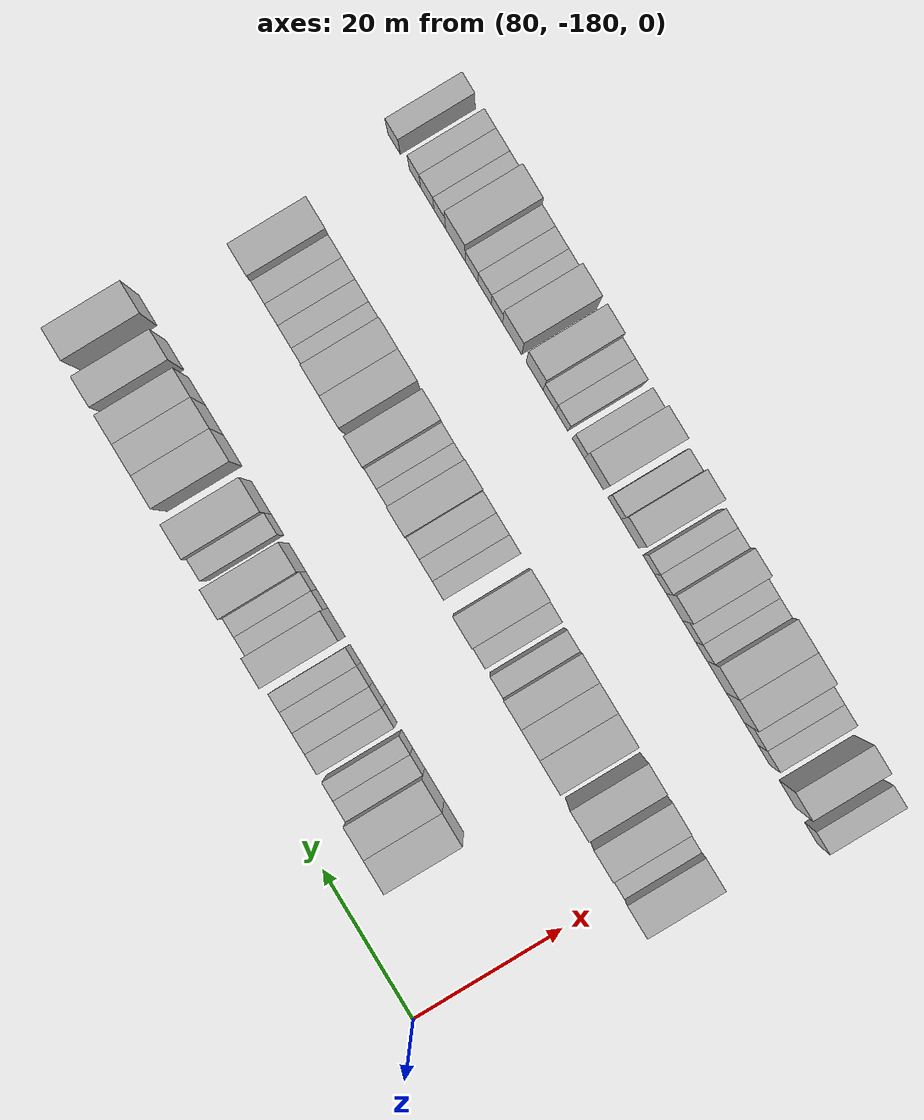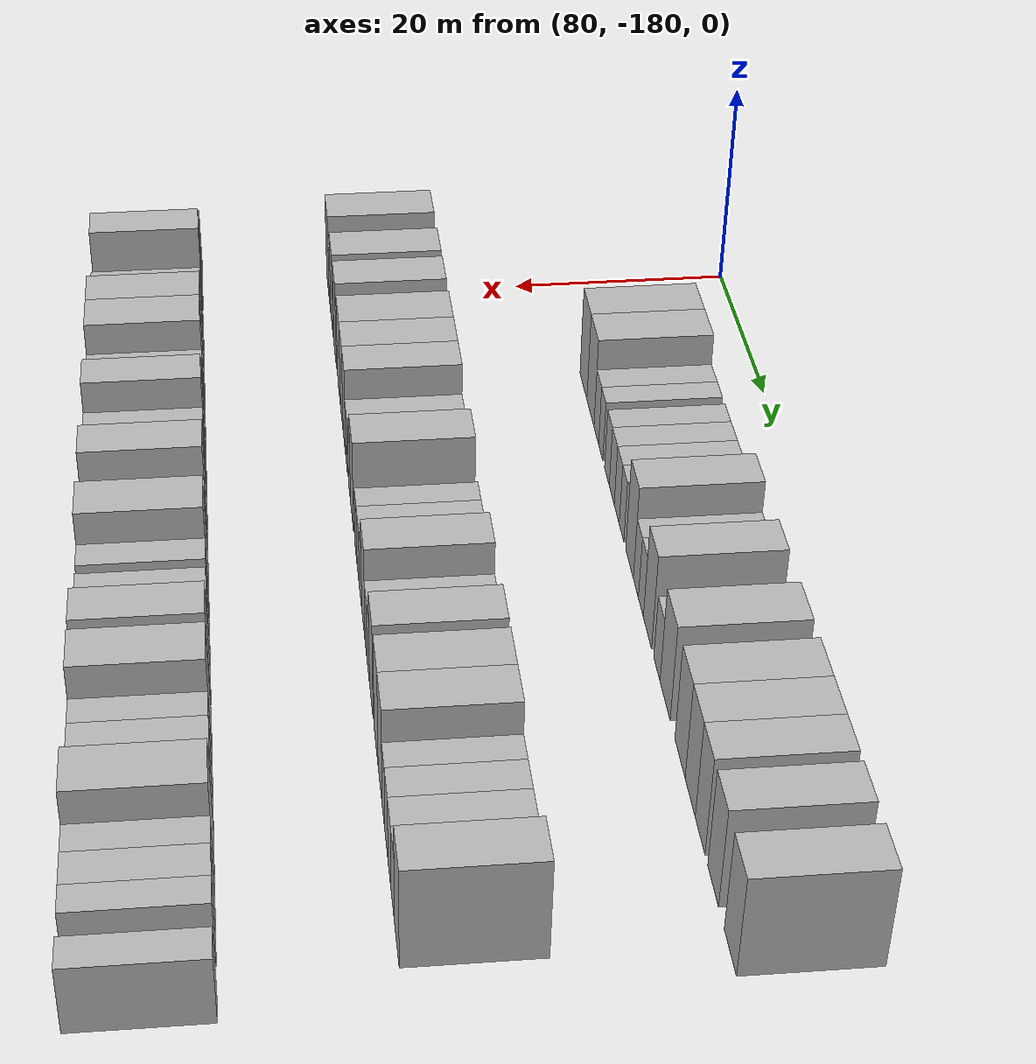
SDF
<sdf version="1.6">
 <world name="default">
  <model name="building_617">
   <static>1</static>
   <pose>91.0000 -162.4675 0 0.000000 0.000000 0.000000</pose>
   <link name="link">
    <pose>0 0 4.50 0 0 0</pose>
    <collision name="collision"><geometry><box><size>10.0000 4.3188 9.0000</size></box></geometry></collision>
    <visual name="visual">
     <cast_shadows>0</cast_shadows>
     <geometry><box><size>10.0000 4.3188 9.0000</size></box></geometry>
     <material>
      <script>
       <uri>model://HANNAS_wall/materials/scripts</uri>
       <uri>model://HANNAS_wall/materials/textures</uri>
       <name>vrc/HANNAS_wall</name>
      </script>
     </material>
    </visual>
   </link>
  </model>
  <model name="building_618">
   <static>1</static>
   <pose>91.0000 -158.1714 0 0.000000 0.000000 0.000000</pose>
   <link name="link">
    <pose>0 0 4.50 0 0 0</pose>
    <collision name="collision"><geometry><box><size>10.0000 4.2734 9.0000</size></box></geometry></collision>
    <visual name="visual">
     <cast_shadows>0</cast_shadows>
     <geometry><box><size>10.0000 4.2734 9.0000</size></box></geometry>
     <material>
      <script>
       <uri>model://HANNAS_wall/materials/scripts</uri>
       <uri>model://HANNAS_wall/materials/textures</uri>
       <name>vrc/HANNAS_wall</name>
      </script>
     </material>
    </visual>
   </link>
  </model>
  <model name="building_619">
   <static>1</static>
   <pose>91.0000 -154.6838 0 0.000000 0.000000 0.000000</pose>
   <link name="link">
    <pose>0 0 3.00 0 0 0</pose>
    <collision name="collision"><geometry><box><size>10.0000 2.7017 6.0000</size></box></geometry></collision>
    <visual name="visual">
     <cast_shadows>0</cast_shadows>
     <geometry><box><size>10.0000 2.7017 6.0000</size></box></geometry>
     <material>
      <script>
       <uri>model://HANNAS_wall/materials/scripts</uri>
       <uri>model://HANNAS_wall/materials/textures</uri>
       <name>vrc/HANNAS_wall</name>
      </script>
     </material>
    </visual>
   </link>
  </model>
  <model name="building_620">
   <static>1</static>
   <pose>91.0000 -152.1274 0 0.000000 0.000000 0.000000</pose>
   <link name="link">
    <pose>0 0 3.00 0 0 0</pose>
    <collision name="collision"><geometry><box><size>10.0000 2.4111 6.0000</size></box></geometry></collision>
    <visual name="visual">
     <cast_shadows>0</cast_shadows>
     <geometry><box><size>10.0000 2.4111 6.0000</size></box></geometry>
     <material>
      <script>
       <uri>model://HANNAS_wall/materials/scripts</uri>
       <uri>model://HANNAS_wall/materials/textures</uri>
       <name>vrc/HANNAS_wall</name>
      </script>
     </material>
    </visual>
   </link>
  </model>
  <model name="building_621">
   <static>1</static>
   <pose>91.0000 -148.6136 0 0.000000 0.000000 0.000000</pose>
   <link name="link">
    <pose>0 0 3.00 0 0 0</pose>
    <collision name="collision"><geometry><box><size>10.0000 2.6164 6.0000</size></box></geometry></collision>
    <visual name="visual">
     <cast_shadows>0</cast_shadows>
     <geometry><box><size>10.0000 2.6164 6.0000</size></box></geometry>
     <material>
      <script>
       <uri>model://HANNAS_wall/materials/scripts</uri>
       <uri>model://HANNAS_wall/materials/textures</uri>
       <name>vrc/HANNAS_wall</name>
      </script>
     </material>
    </visual>
   </link>
  </model>
  <model name="building_622">
   <static>1</static>
   <pose>91.0000 -145.9317 0 0.000000 0.000000 0.000000</pose>
   <link name="link">
    <pose>0 0 3.00 0 0 0</pose>
    <collision name="collision"><geometry><box><size>10.0000 2.7474 6.0000</size></box></geometry></collision>
    <visual name="visual">
     <cast_shadows>0</cast_shadows>
     <geometry><box><size>10.0000 2.7474 6.0000</size></box></geometry>
     <material>
      <script>
       <uri>model://HANNAS_wall/materials/scripts</uri>
       <uri>model://HANNAS_wall/materials/textures</uri>
       <name>vrc/HANNAS_wall</name>
      </script>
     </material>
    </visual>
   </link>
  </model>
  <model name="building_623">
   <static>1</static>
   <pose>91.0000 -143.2208 0 0.000000 0.000000 0.000000</pose>
   <link name="link">
    <pose>0 0 3.00 0 0 0</pose>
    <collision name="collision"><geometry><box><size>10.0000 2.6745 6.0000</size></box></geometry></collision>
    <visual name="visual">
     <cast_shadows>0</cast_shadows>
     <geometry><box><size>10.0000 2.6745 6.0000</size></box></geometry>
     <material>
      <script>
       <uri>model://HANNAS_wall/materials/scripts</uri>
       <uri>model://HANNAS_wall/materials/textures</uri>
       <name>vrc/HANNAS_wall</name>
      </script>
     </material>
    </visual>
   </link>
  </model>
  <model name="building_624">
   <static>1</static>
   <pose>91.0000 -140.6832 0 0.000000 0.000000 0.000000</pose>
   <link name="link">
    <pose>0 0 3.00 0 0 0</pose>
    <collision name="collision"><geometry><box><size>10.0000 2.4007 6.0000</size></box></geometry></collision>
    <visual name="visual">
     <cast_shadows>0</cast_shadows>
     <geometry><box><size>10.0000 2.4007 6.0000</size></box></geometry>
     <material>
      <script>
       <uri>model://HANNAS_wall/materials/scripts</uri>
       <uri>model://HANNAS_wall/materials/textures</uri>
       <name>vrc/HANNAS_wall</name>
      </script>
     </material>
    </visual>
   </link>
  </model>
  <model name="building_625">
   <static>1</static>
   <pose>91.0000 -136.5564 0 0.000000 0.000000 0.000000</pose>
   <link name="link">
    <pose>0 0 4.50 0 0 0</pose>
    <collision name="collision"><geometry><box><size>10.0000 3.8529 9.0000</size></box></geometry></collision>
    <visual name="visual">
     <cast_shadows>0</cast_shadows>
     <geometry><box><size>10.0000 3.8529 9.0000</size></box></geometry>
     <material>
      <script>
       <uri>model://HANNAS_wall/materials/scripts</uri>
       <uri>model://HANNAS_wall/materials/textures</uri>
       <name>vrc/HANNAS_wall</name>
      </script>
     </material>
    </visual>
   </link>
  </model>
  <model name="building_626">
   <static>1</static>
   <pose>91.0000 -133.3888 0 0.000000 0.000000 0.000000</pose>
   <link name="link">
    <pose>0 0 3.00 0 0 0</pose>
    <collision name="collision"><geometry><box><size>10.0000 2.4825 6.0000</size></box></geometry></collision>
    <visual name="visual">
     <cast_shadows>0</cast_shadows>
     <geometry><box><size>10.0000 2.4825 6.0000</size></box></geometry>
     <material>
      <script>
       <uri>model://HANNAS_wall/materials/scripts</uri>
       <uri>model://HANNAS_wall/materials/textures</uri>
       <name>vrc/HANNAS_wall</name>
      </script>
     </material>
    </visual>
   </link>
  </model>
  <model name="building_627">
   <static>1</static>
   <pose>91.0000 -130.9293 0 0.000000 0.000000 0.000000</pose>
   <link name="link">
    <pose>0 0 3.00 0 0 0</pose>
    <collision name="collision"><geometry><box><size>10.0000 2.4366 6.0000</size></box></geometry></collision>
    <visual name="visual">
     <cast_shadows>0</cast_shadows>
     <geometry><box><size>10.0000 2.4366 6.0000</size></box></geometry>
     <material>
      <script>
       <uri>model://HANNAS_wall/materials/scripts</uri>
       <uri>model://HANNAS_wall/materials/textures</uri>
       <name>vrc/HANNAS_wall</name>
      </script>
     </material>
    </visual>
   </link>
  </model>
  <model name="building_628">
   <static>1</static>
   <pose>91.0000 -127.8032 0 0.000000 0.000000 0.000000</pose>
   <link name="link">
    <pose>0 0 4.50 0 0 0</pose>
    <collision name="collision"><geometry><box><size>10.0000 3.8155 9.0000</size></box></geometry></collision>
    <visual name="visual">
     <cast_shadows>0</cast_shadows>
     <geometry><box><size>10.0000 3.8155 9.0000</size></box></geometry>
     <material>
      <script>
       <uri>model://HANNAS_wall/materials/scripts</uri>
       <uri>model://HANNAS_wall/materials/textures</uri>
       <name>vrc/HANNAS_wall</name>
      </script>
     </material>
    </visual>
   </link>
  </model>
  <model name="building_629">
   <static>1</static>
   <pose>91.0000 -123.4745 0 0.000000 0.000000 0.000000</pose>
   <link name="link">
    <pose>0 0 3.00 0 0 0</pose>
    <collision name="collision"><geometry><box><size>10.0000 2.8418 6.0000</size></box></geometry></collision>
    <visual name="visual">
     <cast_shadows>0</cast_shadows>
     <geometry><box><size>10.0000 2.8418 6.0000</size></box></geometry>
     <material>
      <script>
       <uri>model://HANNAS_wall/materials/scripts</uri>
       <uri>model://HANNAS_wall/materials/textures</uri>
       <name>vrc/HANNAS_wall</name>
      </script>
     </material>
    </visual>
   </link>
  </model>
  <model name="building_630">
   <static>1</static>
   <pose>91.0000 -119.8474 0 0.000000 0.000000 0.000000</pose>
   <link name="link">
    <pose>0 0 4.50 0 0 0</pose>
    <collision name="collision"><geometry><box><size>10.0000 4.4125 9.0000</size></box></geometry></collision>
    <visual name="visual">
     <cast_shadows>0</cast_shadows>
     <geometry><box><size>10.0000 4.4125 9.0000</size></box></geometry>
     <material>
      <script>
       <uri>model://HANNAS_wall/materials/scripts</uri>
       <uri>model://HANNAS_wall/materials/textures</uri>
       <name>vrc/HANNAS_wall</name>
      </script>
     </material>
    </visual>
   </link>
  </model>
  <model name="building_631">
   <static>1</static>
   <pose>91.0000 -113.5445 0 0.000000 0.000000 0.000000</pose>
   <link name="link">
    <pose>0 0 4.50 0 0 0</pose>
    <collision name="collision"><geometry><box><size>10.0000 4.1932 9.0000</size></box></geometry></collision>
    <visual name="visual">
     <cast_shadows>0</cast_shadows>
     <geometry><box><size>10.0000 4.1932 9.0000</size></box></geometry>
     <material>
      <script>
       <uri>model://HANNAS_wall/materials/scripts</uri>
       <uri>model://HANNAS_wall/materials/textures</uri>
       <name>vrc/HANNAS_wall</name>
      </script>
     </material>
    </visual>
   </link>
  </model>
  <model name="building_632">
   <static>1</static>
   <pose>91.0000 -109.4567 0 0.000000 0.000000 0.000000</pose>
   <link name="link">
    <pose>0 0 4.50 0 0 0</pose>
    <collision name="collision"><geometry><box><size>10.0000 3.9825 9.0000</size></box></geometry></collision>
    <visual name="visual">
     <cast_shadows>0</cast_shadows>
     <geometry><box><size>10.0000 3.9825 9.0000</size></box></geometry>
     <material>
      <script>
       <uri>model://HANNAS_wall/materials/scripts</uri>
       <uri>model://HANNAS_wall/materials/textures</uri>
       <name>vrc/HANNAS_wall</name>
      </script>
     </material>
    </visual>
   </link>
  </model>
  <model name="building_633">
   <static>1</static>
   <pose>91.0000 -105.6038 0 0.000000 0.000000 0.000000</pose>
   <link name="link">
    <pose>0 0 4.50 0 0 0</pose>
    <collision name="collision"><geometry><box><size>10.0000 3.7233 9.0000</size></box></geometry></collision>
    <visual name="visual">
     <cast_shadows>0</cast_shadows>
     <geometry><box><size>10.0000 3.7233 9.0000</size></box></geometry>
     <material>
      <script>
       <uri>model://HANNAS_wall/materials/scripts</uri>
       <uri>model://HANNAS_wall/materials/textures</uri>
       <name>vrc/HANNAS_wall</name>
      </script>
     </material>
    </visual>
   </link>
  </model>
  <model name="building_634">
   <static>1</static>
   <pose>91.0000 -100.7864 0 0.000000 0.000000 0.000000</pose>
   <link name="link">
    <pose>0 0 4.50 0 0 0</pose>
    <collision name="collision"><geometry><box><size>10.0000 3.9116 9.0000</size></box></geometry></collision>
    <visual name="visual">
     <cast_shadows>0</cast_shadows>
     <geometry><box><size>10.0000 3.9116 9.0000</size></box></geometry>
     <material>
      <script>
       <uri>model://HANNAS_wall/materials/scripts</uri>
       <uri>model://HANNAS_wall/materials/textures</uri>
       <name>vrc/HANNAS_wall</name>
      </script>
     </material>
    </visual>
   </link>
  </model>
  <model name="building_635">
   <static>1</static>
   <pose>91.0000 -94.7505 0 0.000000 0.000000 0.000000</pose>
   <link name="link">
    <pose>0 0 4.50 0 0 0</pose>
    <collision name="collision"><geometry><box><size>10.0000 4.1603 9.0000</size></box></geometry></collision>
    <visual name="visual">
     <cast_shadows>0</cast_shadows>
     <geometry><box><size>10.0000 4.1603 9.0000</size></box></geometry>
     <material>
      <script>
       <uri>model://HANNAS_wall/materials/scripts</uri>
       <uri>model://HANNAS_wall/materials/textures</uri>
       <name>vrc/HANNAS_wall</name>
      </script>
     </material>
    </visual>
   </link>
  </model>
  <model name="building_795">
   <static>1</static>
   <pose>113.0000 -181.4421 0 0.000000 0.000000 0.000000</pose>
   <link name="link">
    <pose>0 0 4.50 0 0 0</pose>
    <collision name="collision"><geometry><box><size>10.0000 4.2569 9.0000</size></box></geometry></collision>
    <visual name="visual">
     <cast_shadows>0</cast_shadows>
     <geometry><box><size>10.0000 4.2569 9.0000</size></box></geometry>
     <material>
      <script>
       <uri>model://HANNAS_wall/materials/scripts</uri>
       <uri>model://HANNAS_wall/materials/textures</uri>
       <name>vrc/HANNAS_wall</name>
      </script>
     </material>
    </visual>
   </link>
  </model>
  <model name="building_796">
   <static>1</static>
   <pose>113.0000 -177.8733 0 0.000000 0.000000 0.000000</pose>
   <link name="link">
    <pose>0 0 3.00 0 0 0</pose>
    <collision name="collision"><geometry><box><size>10.0000 2.8808 6.0000</size></box></geometry></collision>
    <visual name="visual">
     <cast_shadows>0</cast_shadows>
     <geometry><box><size>10.0000 2.8808 6.0000</size></box></geometry>
     <material>
      <script>
       <uri>model://HANNAS_wall/materials/scripts</uri>
       <uri>model://HANNAS_wall/materials/textures</uri>
       <name>vrc/HANNAS_wall</name>
      </script>
     </material>
    </visual>
   </link>
  </model>
  <model name="building_797">
   <static>1</static>
   <pose>113.0000 -174.3621 0 0.000000 0.000000 0.000000</pose>
   <link name="link">
    <pose>0 0 4.50 0 0 0</pose>
    <collision name="collision"><geometry><box><size>10.0000 4.1414 9.0000</size></box></geometry></collision>
    <visual name="visual">
     <cast_shadows>0</cast_shadows>
     <geometry><box><size>10.0000 4.1414 9.0000</size></box></geometry>
     <material>
      <script>
       <uri>model://HANNAS_wall/materials/scripts</uri>
       <uri>model://HANNAS_wall/materials/textures</uri>
       <name>vrc/HANNAS_wall</name>
      </script>
     </material>
    </visual>
   </link>
  </model>
  <model name="building_798">
   <static>1</static>
   <pose>113.0000 -169.2949 0 0.000000 0.000000 0.000000</pose>
   <link name="link">
    <pose>0 0 4.50 0 0 0</pose>
    <collision name="collision"><geometry><box><size>10.0000 3.9931 9.0000</size></box></geometry></collision>
    <visual name="visual">
     <cast_shadows>0</cast_shadows>
     <geometry><box><size>10.0000 3.9931 9.0000</size></box></geometry>
     <material>
      <script>
       <uri>model://HANNAS_wall/materials/scripts</uri>
       <uri>model://HANNAS_wall/materials/textures</uri>
       <name>vrc/HANNAS_wall</name>
      </script>
     </material>
    </visual>
   </link>
  </model>
  <model name="building_799">
   <static>1</static>
   <pose>113.0000 -163.1178 0 0.000000 0.000000 0.000000</pose>
   <link name="link">
    <pose>0 0 4.50 0 0 0</pose>
    <collision name="collision"><geometry><box><size>10.0000 4.3611 9.0000</size></box></geometry></collision>
    <visual name="visual">
     <cast_shadows>0</cast_shadows>
     <geometry><box><size>10.0000 4.3611 9.0000</size></box></geometry>
     <material>
      <script>
       <uri>model://HANNAS_wall/materials/scripts</uri>
       <uri>model://HANNAS_wall/materials/textures</uri>
       <name>vrc/HANNAS_wall</name>
      </script>
     </material>
    </visual>
   </link>
  </model>
  <model name="building_800">
   <static>1</static>
   <pose>113.0000 -158.9942 0 0.000000 0.000000 0.000000</pose>
   <link name="link">
    <pose>0 0 4.50 0 0 0</pose>
    <collision name="collision"><geometry><box><size>10.0000 3.8859 9.0000</size></box></geometry></collision>
    <visual name="visual">
     <cast_shadows>0</cast_shadows>
     <geometry><box><size>10.0000 3.8859 9.0000</size></box></geometry>
     <material>
      <script>
       <uri>model://HANNAS_wall/materials/scripts</uri>
       <uri>model://HANNAS_wall/materials/textures</uri>
       <name>vrc/HANNAS_wall</name>
      </script>
     </material>
    </visual>
   </link>
  </model>
  <model name="building_801">
   <static>1</static>
   <pose>113.0000 -155.1881 0 0.000000 0.000000 0.000000</pose>
   <link name="link">
    <pose>0 0 4.50 0 0 0</pose>
    <collision name="collision"><geometry><box><size>10.0000 3.7264 9.0000</size></box></geometry></collision>
    <visual name="visual">
     <cast_shadows>0</cast_shadows>
     <geometry><box><size>10.0000 3.7264 9.0000</size></box></geometry>
     <material>
      <script>
       <uri>model://HANNAS_wall/materials/scripts</uri>
       <uri>model://HANNAS_wall/materials/textures</uri>
       <name>vrc/HANNAS_wall</name>
      </script>
     </material>
    </visual>
   </link>
  </model>
  <model name="building_802">
   <static>1</static>
   <pose>113.0000 -151.9306 0 0.000000 0.000000 0.000000</pose>
   <link name="link">
    <pose>0 0 3.00 0 0 0</pose>
    <collision name="collision"><geometry><box><size>10.0000 2.7886 6.0000</size></box></geometry></collision>
    <visual name="visual">
     <cast_shadows>0</cast_shadows>
     <geometry><box><size>10.0000 2.7886 6.0000</size></box></geometry>
     <material>
      <script>
       <uri>model://HANNAS_wall/materials/scripts</uri>
       <uri>model://HANNAS_wall/materials/textures</uri>
       <name>vrc/HANNAS_wall</name>
      </script>
     </material>
    </visual>
   </link>
  </model>
  <model name="building_803">
   <static>1</static>
   <pose>113.0000 -148.1362 0 0.000000 0.000000 0.000000</pose>
   <link name="link">
    <pose>0 0 3.00 0 0 0</pose>
    <collision name="collision"><geometry><box><size>10.0000 2.8001 6.0000</size></box></geometry></collision>
    <visual name="visual">
     <cast_shadows>0</cast_shadows>
     <geometry><box><size>10.0000 2.8001 6.0000</size></box></geometry>
     <material>
      <script>
       <uri>model://HANNAS_wall/materials/scripts</uri>
       <uri>model://HANNAS_wall/materials/textures</uri>
       <name>vrc/HANNAS_wall</name>
      </script>
     </material>
    </visual>
   </link>
  </model>
  <model name="building_804">
   <static>1</static>
   <pose>113.0000 -144.6900 0 0.000000 0.000000 0.000000</pose>
   <link name="link">
    <pose>0 0 4.50 0 0 0</pose>
    <collision name="collision"><geometry><box><size>10.0000 4.0923 9.0000</size></box></geometry></collision>
    <visual name="visual">
     <cast_shadows>0</cast_shadows>
     <geometry><box><size>10.0000 4.0923 9.0000</size></box></geometry>
     <material>
      <script>
       <uri>model://HANNAS_wall/materials/scripts</uri>
       <uri>model://HANNAS_wall/materials/textures</uri>
       <name>vrc/HANNAS_wall</name>
      </script>
     </material>
    </visual>
   </link>
  </model>
  <model name="building_805">
   <static>1</static>
   <pose>113.0000 -139.4241 0 0.000000 0.000000 0.000000</pose>
   <link name="link">
    <pose>0 0 3.00 0 0 0</pose>
    <collision name="collision"><geometry><box><size>10.0000 2.4395 6.0000</size></box></geometry></collision>
    <visual name="visual">
     <cast_shadows>0</cast_shadows>
     <geometry><box><size>10.0000 2.4395 6.0000</size></box></geometry>
     <material>
      <script>
       <uri>model://HANNAS_wall/materials/scripts</uri>
       <uri>model://HANNAS_wall/materials/textures</uri>
       <name>vrc/HANNAS_wall</name>
      </script>
     </material>
    </visual>
   </link>
  </model>
  <model name="building_806">
   <static>1</static>
   <pose>113.0000 -136.7959 0 0.000000 0.000000 0.000000</pose>
   <link name="link">
    <pose>0 0 3.00 0 0 0</pose>
    <collision name="collision"><geometry><box><size>10.0000 2.8168 6.0000</size></box></geometry></collision>
    <visual name="visual">
     <cast_shadows>0</cast_shadows>
     <geometry><box><size>10.0000 2.8168 6.0000</size></box></geometry>
     <material>
      <script>
       <uri>model://HANNAS_wall/materials/scripts</uri>
       <uri>model://HANNAS_wall/materials/textures</uri>
       <name>vrc/HANNAS_wall</name>
      </script>
     </material>
    </visual>
   </link>
  </model>
  <model name="building_807">
   <static>1</static>
   <pose>113.0000 -133.9658 0 0.000000 0.000000 0.000000</pose>
   <link name="link">
    <pose>0 0 3.00 0 0 0</pose>
    <collision name="collision"><geometry><box><size>10.0000 2.8433 6.0000</size></box></geometry></collision>
    <visual name="visual">
     <cast_shadows>0</cast_shadows>
     <geometry><box><size>10.0000 2.8433 6.0000</size></box></geometry>
     <material>
      <script>
       <uri>model://HANNAS_wall/materials/scripts</uri>
       <uri>model://HANNAS_wall/materials/textures</uri>
       <name>vrc/HANNAS_wall</name>
      </script>
     </material>
    </visual>
   </link>
  </model>
  <model name="building_808">
   <static>1</static>
   <pose>113.0000 -130.6231 0 0.000000 0.000000 0.000000</pose>
   <link name="link">
    <pose>0 0 4.50 0 0 0</pose>
    <collision name="collision"><geometry><box><size>10.0000 3.8423 9.0000</size></box></geometry></collision>
    <visual name="visual">
     <cast_shadows>0</cast_shadows>
     <geometry><box><size>10.0000 3.8423 9.0000</size></box></geometry>
     <material>
      <script>
       <uri>model://HANNAS_wall/materials/scripts</uri>
       <uri>model://HANNAS_wall/materials/textures</uri>
       <name>vrc/HANNAS_wall</name>
      </script>
     </material>
    </visual>
   </link>
  </model>
  <model name="building_809">
   <static>1</static>
   <pose>113.0000 -127.4961 0 0.000000 0.000000 0.000000</pose>
   <link name="link">
    <pose>0 0 3.00 0 0 0</pose>
    <collision name="collision"><geometry><box><size>10.0000 2.4116 6.0000</size></box></geometry></collision>
    <visual name="visual">
     <cast_shadows>0</cast_shadows>
     <geometry><box><size>10.0000 2.4116 6.0000</size></box></geometry>
     <material>
      <script>
       <uri>model://HANNAS_wall/materials/scripts</uri>
       <uri>model://HANNAS_wall/materials/textures</uri>
       <name>vrc/HANNAS_wall</name>
      </script>
     </material>
    </visual>
   </link>
  </model>
  <model name="building_810">
   <static>1</static>
   <pose>113.0000 -124.9812 0 0.000000 0.000000 0.000000</pose>
   <link name="link">
    <pose>0 0 3.00 0 0 0</pose>
    <collision name="collision"><geometry><box><size>10.0000 2.6182 6.0000</size></box></geometry></collision>
    <visual name="visual">
     <cast_shadows>0</cast_shadows>
     <geometry><box><size>10.0000 2.6182 6.0000</size></box></geometry>
     <material>
      <script>
       <uri>model://HANNAS_wall/materials/scripts</uri>
       <uri>model://HANNAS_wall/materials/textures</uri>
       <name>vrc/HANNAS_wall</name>
      </script>
     </material>
    </visual>
   </link>
  </model>
  <model name="building_811">
   <static>1</static>
   <pose>113.0000 -121.6977 0 0.000000 0.000000 0.000000</pose>
   <link name="link">
    <pose>0 0 4.50 0 0 0</pose>
    <collision name="collision"><geometry><box><size>10.0000 3.9489 9.0000</size></box></geometry></collision>
    <visual name="visual">
     <cast_shadows>0</cast_shadows>
     <geometry><box><size>10.0000 3.9489 9.0000</size></box></geometry>
     <material>
      <script>
       <uri>model://HANNAS_wall/materials/scripts</uri>
       <uri>model://HANNAS_wall/materials/textures</uri>
       <name>vrc/HANNAS_wall</name>
      </script>
     </material>
    </visual>
   </link>
  </model>
  <model name="building_812">
   <static>1</static>
   <pose>113.0000 -116.6773 0 0.000000 0.000000 0.000000</pose>
   <link name="link">
    <pose>0 0 4.50 0 0 0</pose>
    <collision name="collision"><geometry><box><size>10.0000 4.0919 9.0000</size></box></geometry></collision>
    <visual name="visual">
     <cast_shadows>0</cast_shadows>
     <geometry><box><size>10.0000 4.0919 9.0000</size></box></geometry>
     <material>
      <script>
       <uri>model://HANNAS_wall/materials/scripts</uri>
       <uri>model://HANNAS_wall/materials/textures</uri>
       <name>vrc/HANNAS_wall</name>
      </script>
     </material>
    </visual>
   </link>
  </model>
  <model name="building_813">
   <static>1</static>
   <pose>113.0000 -112.6222 0 0.000000 0.000000 0.000000</pose>
   <link name="link">
    <pose>0 0 4.50 0 0 0</pose>
    <collision name="collision"><geometry><box><size>10.0000 4.0182 9.0000</size></box></geometry></collision>
    <visual name="visual">
     <cast_shadows>0</cast_shadows>
     <geometry><box><size>10.0000 4.0182 9.0000</size></box></geometry>
     <material>
      <script>
       <uri>model://HANNAS_wall/materials/scripts</uri>
       <uri>model://HANNAS_wall/materials/textures</uri>
       <name>vrc/HANNAS_wall</name>
      </script>
     </material>
    </visual>
   </link>
  </model>
  <model name="building_814">
   <static>1</static>
   <pose>113.0000 -109.3414 0 0.000000 0.000000 0.000000</pose>
   <link name="link">
    <pose>0 0 3.00 0 0 0</pose>
    <collision name="collision"><geometry><box><size>10.0000 2.5434 6.0000</size></box></geometry></collision>
    <visual name="visual">
     <cast_shadows>0</cast_shadows>
     <geometry><box><size>10.0000 2.5434 6.0000</size></box></geometry>
     <material>
      <script>
       <uri>model://HANNAS_wall/materials/scripts</uri>
       <uri>model://HANNAS_wall/materials/textures</uri>
       <name>vrc/HANNAS_wall</name>
      </script>
     </material>
    </visual>
   </link>
  </model>
  <model name="building_815">
   <static>1</static>
   <pose>113.0000 -106.6104 0 0.000000 0.000000 0.000000</pose>
   <link name="link">
    <pose>0 0 3.00 0 0 0</pose>
    <collision name="collision"><geometry><box><size>10.0000 2.9188 6.0000</size></box></geometry></collision>
    <visual name="visual">
     <cast_shadows>0</cast_shadows>
     <geometry><box><size>10.0000 2.9188 6.0000</size></box></geometry>
     <material>
      <script>
       <uri>model://HANNAS_wall/materials/scripts</uri>
       <uri>model://HANNAS_wall/materials/textures</uri>
       <name>vrc/HANNAS_wall</name>
      </script>
     </material>
    </visual>
   </link>
  </model>
  <model name="building_816">
   <static>1</static>
   <pose>113.0000 -103.7564 0 0.000000 0.000000 0.000000</pose>
   <link name="link">
    <pose>0 0 3.00 0 0 0</pose>
    <collision name="collision"><geometry><box><size>10.0000 2.7892 6.0000</size></box></geometry></collision>
    <visual name="visual">
     <cast_shadows>0</cast_shadows>
     <geometry><box><size>10.0000 2.7892 6.0000</size></box></geometry>
     <material>
      <script>
       <uri>model://HANNAS_wall/materials/scripts</uri>
       <uri>model://HANNAS_wall/materials/textures</uri>
       <name>vrc/HANNAS_wall</name>
      </script>
     </material>
    </visual>
   </link>
  </model>
  <model name="building_817">
   <static>1</static>
   <pose>113.0000 -100.8833 0 0.000000 0.000000 0.000000</pose>
   <link name="link">
    <pose>0 0 3.00 0 0 0</pose>
    <collision name="collision"><geometry><box><size>10.0000 2.9570 6.0000</size></box></geometry></collision>
    <visual name="visual">
     <cast_shadows>0</cast_shadows>
     <geometry><box><size>10.0000 2.9570 6.0000</size></box></geometry>
     <material>
      <script>
       <uri>model://HANNAS_wall/materials/scripts</uri>
       <uri>model://HANNAS_wall/materials/textures</uri>
       <name>vrc/HANNAS_wall</name>
      </script>
     </material>
    </visual>
   </link>
  </model>
  <model name="building_818">
   <static>1</static>
   <pose>113.0000 -97.3537 0 0.000000 0.000000 0.000000</pose>
   <link name="link">
    <pose>0 0 4.50 0 0 0</pose>
    <collision name="collision"><geometry><box><size>10.0000 4.1023 9.0000</size></box></geometry></collision>
    <visual name="visual">
     <cast_shadows>0</cast_shadows>
     <geometry><box><size>10.0000 4.1023 9.0000</size></box></geometry>
     <material>
      <script>
       <uri>model://HANNAS_wall/materials/scripts</uri>
       <uri>model://HANNAS_wall/materials/textures</uri>
       <name>vrc/HANNAS_wall</name>
      </script>
     </material>
    </visual>
   </link>
  </model>
  <model name="building_982">
   <static>1</static>
   <pose>135.0000 -185.3886 0 0.000000 0.000000 0.000000</pose>
   <link name="link">
    <pose>0 0 3.00 0 0 0</pose>
    <collision name="collision"><geometry><box><size>10.0000 2.9516 6.0000</size></box></geometry></collision>
    <visual name="visual">
     <cast_shadows>0</cast_shadows>
     <geometry><box><size>10.0000 2.9516 6.0000</size></box></geometry>
     <material>
      <script>
       <uri>model://HANNAS_wall/materials/scripts</uri>
       <uri>model://HANNAS_wall/materials/textures</uri>
       <name>vrc/HANNAS_wall</name>
      </script>
     </material>
    </visual>
   </link>
  </model>
  <model name="building_983">
   <static>1</static>
   <pose>135.0000 -180.0792 0 0.000000 0.000000 0.000000</pose>
   <link name="link">
    <pose>0 0 4.50 0 0 0</pose>
    <collision name="collision"><geometry><box><size>10.0000 3.6672 9.0000</size></box></geometry></collision>
    <visual name="visual">
     <cast_shadows>0</cast_shadows>
     <geometry><box><size>10.0000 3.6672 9.0000</size></box></geometry>
     <material>
      <script>
       <uri>model://HANNAS_wall/materials/scripts</uri>
       <uri>model://HANNAS_wall/materials/textures</uri>
       <name>vrc/HANNAS_wall</name>
      </script>
     </material>
    </visual>
   </link>
  </model>
  <model name="building_984">
   <static>1</static>
   <pose>135.0000 -174.8584 0 0.000000 0.000000 0.000000</pose>
   <link name="link">
    <pose>0 0 3.00 0 0 0</pose>
    <collision name="collision"><geometry><box><size>10.0000 2.7743 6.0000</size></box></geometry></collision>
    <visual name="visual">
     <cast_shadows>0</cast_shadows>
     <geometry><box><size>10.0000 2.7743 6.0000</size></box></geometry>
     <material>
      <script>
       <uri>model://HANNAS_wall/materials/scripts</uri>
       <uri>model://HANNAS_wall/materials/textures</uri>
       <name>vrc/HANNAS_wall</name>
      </script>
     </material>
    </visual>
   </link>
  </model>
  <model name="building_985">
   <static>1</static>
   <pose>135.0000 -172.0099 0 0.000000 0.000000 0.000000</pose>
   <link name="link">
    <pose>0 0 3.00 0 0 0</pose>
    <collision name="collision"><geometry><box><size>10.0000 2.9228 6.0000</size></box></geometry></collision>
    <visual name="visual">
     <cast_shadows>0</cast_shadows>
     <geometry><box><size>10.0000 2.9228 6.0000</size></box></geometry>
     <material>
      <script>
       <uri>model://HANNAS_wall/materials/scripts</uri>
       <uri>model://HANNAS_wall/materials/textures</uri>
       <name>vrc/HANNAS_wall</name>
      </script>
     </material>
    </visual>
   </link>
  </model>
  <model name="building_986">
   <static>1</static>
   <pose>135.0000 -168.5414 0 0.000000 0.000000 0.000000</pose>
   <link name="link">
    <pose>0 0 4.50 0 0 0</pose>
    <collision name="collision"><geometry><box><size>10.0000 4.0142 9.0000</size></box></geometry></collision>
    <visual name="visual">
     <cast_shadows>0</cast_shadows>
     <geometry><box><size>10.0000 4.0142 9.0000</size></box></geometry>
     <material>
      <script>
       <uri>model://HANNAS_wall/materials/scripts</uri>
       <uri>model://HANNAS_wall/materials/textures</uri>
       <name>vrc/HANNAS_wall</name>
      </script>
     </material>
    </visual>
   </link>
  </model>
  <model name="building_987">
   <static>1</static>
   <pose>135.0000 -164.4029 0 0.000000 0.000000 0.000000</pose>
   <link name="link">
    <pose>0 0 4.50 0 0 0</pose>
    <collision name="collision"><geometry><box><size>10.0000 4.2627 9.0000</size></box></geometry></collision>
    <visual name="visual">
     <cast_shadows>0</cast_shadows>
     <geometry><box><size>10.0000 4.2627 9.0000</size></box></geometry>
     <material>
      <script>
       <uri>model://HANNAS_wall/materials/scripts</uri>
       <uri>model://HANNAS_wall/materials/textures</uri>
       <name>vrc/HANNAS_wall</name>
      </script>
     </material>
    </visual>
   </link>
  </model>
  <model name="building_988">
   <static>1</static>
   <pose>135.0000 -160.9854 0 0.000000 0.000000 0.000000</pose>
   <link name="link">
    <pose>0 0 3.00 0 0 0</pose>
    <collision name="collision"><geometry><box><size>10.0000 2.5724 6.0000</size></box></geometry></collision>
    <visual name="visual">
     <cast_shadows>0</cast_shadows>
     <geometry><box><size>10.0000 2.5724 6.0000</size></box></geometry>
     <material>
      <script>
       <uri>model://HANNAS_wall/materials/scripts</uri>
       <uri>model://HANNAS_wall/materials/textures</uri>
       <name>vrc/HANNAS_wall</name>
      </script>
     </material>
    </visual>
   </link>
  </model>
  <model name="building_989">
   <static>1</static>
   <pose>135.0000 -158.2899 0 0.000000 0.000000 0.000000</pose>
   <link name="link">
    <pose>0 0 3.00 0 0 0</pose>
    <collision name="collision"><geometry><box><size>10.0000 2.8186 6.0000</size></box></geometry></collision>
    <visual name="visual">
     <cast_shadows>0</cast_shadows>
     <geometry><box><size>10.0000 2.8186 6.0000</size></box></geometry>
     <material>
      <script>
       <uri>model://HANNAS_wall/materials/scripts</uri>
       <uri>model://HANNAS_wall/materials/textures</uri>
       <name>vrc/HANNAS_wall</name>
      </script>
     </material>
    </visual>
   </link>
  </model>
  <model name="building_990">
   <static>1</static>
   <pose>135.0000 -155.0711 0 0.000000 0.000000 0.000000</pose>
   <link name="link">
    <pose>0 0 4.50 0 0 0</pose>
    <collision name="collision"><geometry><box><size>10.0000 3.6190 9.0000</size></box></geometry></collision>
    <visual name="visual">
     <cast_shadows>0</cast_shadows>
     <geometry><box><size>10.0000 3.6190 9.0000</size></box></geometry>
     <material>
      <script>
       <uri>model://HANNAS_wall/materials/scripts</uri>
       <uri>model://HANNAS_wall/materials/textures</uri>
       <name>vrc/HANNAS_wall</name>
      </script>
     </material>
    </visual>
   </link>
  </model>
  <model name="building_991">
   <static>1</static>
   <pose>135.0000 -151.9600 0 0.000000 0.000000 0.000000</pose>
   <link name="link">
    <pose>0 0 3.00 0 0 0</pose>
    <collision name="collision"><geometry><box><size>10.0000 2.6032 6.0000</size></box></geometry></collision>
    <visual name="visual">
     <cast_shadows>0</cast_shadows>
     <geometry><box><size>10.0000 2.6032 6.0000</size></box></geometry>
     <material>
      <script>
       <uri>model://HANNAS_wall/materials/scripts</uri>
       <uri>model://HANNAS_wall/materials/textures</uri>
       <name>vrc/HANNAS_wall</name>
      </script>
     </material>
    </visual>
   </link>
  </model>
  <model name="building_992">
   <static>1</static>
   <pose>135.0000 -149.3828 0 0.000000 0.000000 0.000000</pose>
   <link name="link">
    <pose>0 0 3.00 0 0 0</pose>
    <collision name="collision"><geometry><box><size>10.0000 2.5513 6.0000</size></box></geometry></collision>
    <visual name="visual">
     <cast_shadows>0</cast_shadows>
     <geometry><box><size>10.0000 2.5513 6.0000</size></box></geometry>
     <material>
      <script>
       <uri>model://HANNAS_wall/materials/scripts</uri>
       <uri>model://HANNAS_wall/materials/textures</uri>
       <name>vrc/HANNAS_wall</name>
      </script>
     </material>
    </visual>
   </link>
  </model>
  <model name="building_993">
   <static>1</static>
   <pose>135.0000 -145.1845 0 0.000000 0.000000 0.000000</pose>
   <link name="link">
    <pose>0 0 4.50 0 0 0</pose>
    <collision name="collision"><geometry><box><size>10.0000 3.8451 9.0000</size></box></geometry></collision>
    <visual name="visual">
     <cast_shadows>0</cast_shadows>
     <geometry><box><size>10.0000 3.8451 9.0000</size></box></geometry>
     <material>
      <script>
       <uri>model://HANNAS_wall/materials/scripts</uri>
       <uri>model://HANNAS_wall/materials/textures</uri>
       <name>vrc/HANNAS_wall</name>
      </script>
     </material>
    </visual>
   </link>
  </model>
  <model name="building_994">
   <static>1</static>
   <pose>135.0000 -141.7983 0 0.000000 0.000000 0.000000</pose>
   <link name="link">
    <pose>0 0 3.00 0 0 0</pose>
    <collision name="collision"><geometry><box><size>10.0000 2.9273 6.0000</size></box></geometry></collision>
    <visual name="visual">
     <cast_shadows>0</cast_shadows>
     <geometry><box><size>10.0000 2.9273 6.0000</size></box></geometry>
     <material>
      <script>
       <uri>model://HANNAS_wall/materials/scripts</uri>
       <uri>model://HANNAS_wall/materials/textures</uri>
       <name>vrc/HANNAS_wall</name>
      </script>
     </material>
    </visual>
   </link>
  </model>
  <model name="building_995">
   <static>1</static>
   <pose>135.0000 -137.2271 0 0.000000 0.000000 0.000000</pose>
   <link name="link">
    <pose>0 0 4.50 0 0 0</pose>
    <collision name="collision"><geometry><box><size>10.0000 4.2152 9.0000</size></box></geometry></collision>
    <visual name="visual">
     <cast_shadows>0</cast_shadows>
     <geometry><box><size>10.0000 4.2152 9.0000</size></box></geometry>
     <material>
      <script>
       <uri>model://HANNAS_wall/materials/scripts</uri>
       <uri>model://HANNAS_wall/materials/textures</uri>
       <name>vrc/HANNAS_wall</name>
      </script>
     </material>
    </visual>
   </link>
  </model>
  <model name="building_996">
   <static>1</static>
   <pose>135.0000 -133.7977 0 0.000000 0.000000 0.000000</pose>
   <link name="link">
    <pose>0 0 3.00 0 0 0</pose>
    <collision name="collision"><geometry><box><size>10.0000 2.6436 6.0000</size></box></geometry></collision>
    <visual name="visual">
     <cast_shadows>0</cast_shadows>
     <geometry><box><size>10.0000 2.6436 6.0000</size></box></geometry>
     <material>
      <script>
       <uri>model://HANNAS_wall/materials/scripts</uri>
       <uri>model://HANNAS_wall/materials/textures</uri>
       <name>vrc/HANNAS_wall</name>
      </script>
     </material>
    </visual>
   </link>
  </model>
  <model name="building_997">
   <static>1</static>
   <pose>135.0000 -130.1137 0 0.000000 0.000000 0.000000</pose>
   <link name="link">
    <pose>0 0 3.00 0 0 0</pose>
    <collision name="collision"><geometry><box><size>10.0000 2.7243 6.0000</size></box></geometry></collision>
    <visual name="visual">
     <cast_shadows>0</cast_shadows>
     <geometry><box><size>10.0000 2.7243 6.0000</size></box></geometry>
     <material>
      <script>
       <uri>model://HANNAS_wall/materials/scripts</uri>
       <uri>model://HANNAS_wall/materials/textures</uri>
       <name>vrc/HANNAS_wall</name>
      </script>
     </material>
    </visual>
   </link>
  </model>
  <model name="building_998">
   <static>1</static>
   <pose>135.0000 -127.3746 0 0.000000 0.000000 0.000000</pose>
   <link name="link">
    <pose>0 0 3.00 0 0 0</pose>
    <collision name="collision"><geometry><box><size>10.0000 2.7537 6.0000</size></box></geometry></collision>
    <visual name="visual">
     <cast_shadows>0</cast_shadows>
     <geometry><box><size>10.0000 2.7537 6.0000</size></box></geometry>
     <material>
      <script>
       <uri>model://HANNAS_wall/materials/scripts</uri>
       <uri>model://HANNAS_wall/materials/textures</uri>
       <name>vrc/HANNAS_wall</name>
      </script>
     </material>
    </visual>
   </link>
  </model>
  <model name="building_999">
   <static>1</static>
   <pose>135.0000 -124.1254 0 0.000000 0.000000 0.000000</pose>
   <link name="link">
    <pose>0 0 4.50 0 0 0</pose>
    <collision name="collision"><geometry><box><size>10.0000 3.7447 9.0000</size></box></geometry></collision>
    <visual name="visual">
     <cast_shadows>0</cast_shadows>
     <geometry><box><size>10.0000 3.7447 9.0000</size></box></geometry>
     <material>
      <script>
       <uri>model://HANNAS_wall/materials/scripts</uri>
       <uri>model://HANNAS_wall/materials/textures</uri>
       <name>vrc/HANNAS_wall</name>
      </script>
     </material>
    </visual>
   </link>
  </model>
  <model name="building_1000">
   <static>1</static>
   <pose>135.0000 -119.1652 0 0.000000 0.000000 0.000000</pose>
   <link name="link">
    <pose>0 0 4.50 0 0 0</pose>
    <collision name="collision"><geometry><box><size>10.0000 4.1758 9.0000</size></box></geometry></collision>
    <visual name="visual">
     <cast_shadows>0</cast_shadows>
     <geometry><box><size>10.0000 4.1758 9.0000</size></box></geometry>
     <material>
      <script>
       <uri>model://HANNAS_wall/materials/scripts</uri>
       <uri>model://HANNAS_wall/materials/textures</uri>
       <name>vrc/HANNAS_wall</name>
      </script>
     </material>
    </visual>
   </link>
  </model>
  <model name="building_1001">
   <static>1</static>
   <pose>135.0000 -115.7982 0 0.000000 0.000000 0.000000</pose>
   <link name="link">
    <pose>0 0 3.00 0 0 0</pose>
    <collision name="collision"><geometry><box><size>10.0000 2.5581 6.0000</size></box></geometry></collision>
    <visual name="visual">
     <cast_shadows>0</cast_shadows>
     <geometry><box><size>10.0000 2.5581 6.0000</size></box></geometry>
     <material>
      <script>
       <uri>model://HANNAS_wall/materials/scripts</uri>
       <uri>model://HANNAS_wall/materials/textures</uri>
       <name>vrc/HANNAS_wall</name>
      </script>
     </material>
    </visual>
   </link>
  </model>
  <model name="building_1002">
   <static>1</static>
   <pose>135.0000 -113.0718 0 0.000000 0.000000 0.000000</pose>
   <link name="link">
    <pose>0 0 3.00 0 0 0</pose>
    <collision name="collision"><geometry><box><size>10.0000 2.8949 6.0000</size></box></geometry></collision>
    <visual name="visual">
     <cast_shadows>0</cast_shadows>
     <geometry><box><size>10.0000 2.8949 6.0000</size></box></geometry>
     <material>
      <script>
       <uri>model://HANNAS_wall/materials/scripts</uri>
       <uri>model://HANNAS_wall/materials/textures</uri>
       <name>vrc/HANNAS_wall</name>
      </script>
     </material>
    </visual>
   </link>
  </model>
  <model name="building_1003">
   <static>1</static>
   <pose>135.0000 -110.2158 0 0.000000 0.000000 0.000000</pose>
   <link name="link">
    <pose>0 0 3.00 0 0 0</pose>
    <collision name="collision"><geometry><box><size>10.0000 2.8171 6.0000</size></box></geometry></collision>
    <visual name="visual">
     <cast_shadows>0</cast_shadows>
     <geometry><box><size>10.0000 2.8171 6.0000</size></box></geometry>
     <material>
      <script>
       <uri>model://HANNAS_wall/materials/scripts</uri>
       <uri>model://HANNAS_wall/materials/textures</uri>
       <name>vrc/HANNAS_wall</name>
      </script>
     </material>
    </visual>
   </link>
  </model>
  <model name="building_1004">
   <static>1</static>
   <pose>135.0000 -106.6292 0 0.000000 0.000000 0.000000</pose>
   <link name="link">
    <pose>0 0 4.50 0 0 0</pose>
    <collision name="collision"><geometry><box><size>10.0000 4.3561 9.0000</size></box></geometry></collision>
    <visual name="visual">
     <cast_shadows>0</cast_shadows>
     <geometry><box><size>10.0000 4.3561 9.0000</size></box></geometry>
     <material>
      <script>
       <uri>model://HANNAS_wall/materials/scripts</uri>
       <uri>model://HANNAS_wall/materials/textures</uri>
       <name>vrc/HANNAS_wall</name>
      </script>
     </material>
    </visual>
   </link>
  </model>
  <model name="building_1005">
   <static>1</static>
   <pose>135.0000 -103.1686 0 0.000000 0.000000 0.000000</pose>
   <link name="link">
    <pose>0 0 3.00 0 0 0</pose>
    <collision name="collision"><geometry><box><size>10.0000 2.5652 6.0000</size></box></geometry></collision>
    <visual name="visual">
     <cast_shadows>0</cast_shadows>
     <geometry><box><size>10.0000 2.5652 6.0000</size></box></geometry>
     <material>
      <script>
       <uri>model://HANNAS_wall/materials/scripts</uri>
       <uri>model://HANNAS_wall/materials/textures</uri>
       <name>vrc/HANNAS_wall</name>
      </script>
     </material>
    </visual>
   </link>
  </model>
  <model name="building_1006">
   <static>1</static>
   <pose>135.0000 -100.4086 0 0.000000 0.000000 0.000000</pose>
   <link name="link">
    <pose>0 0 3.00 0 0 0</pose>
    <collision name="collision"><geometry><box><size>10.0000 2.9547 6.0000</size></box></geometry></collision>
    <visual name="visual">
     <cast_shadows>0</cast_shadows>
     <geometry><box><size>10.0000 2.9547 6.0000</size></box></geometry>
     <material>
      <script>
       <uri>model://HANNAS_wall/materials/scripts</uri>
       <uri>model://HANNAS_wall/materials/textures</uri>
       <name>vrc/HANNAS_wall</name>
      </script>
     </material>
    </visual>
   </link>
  </model>
  <model name="building_1007">
   <static>1</static>
   <pose>135.0000 -97.6778 0 0.000000 0.000000 0.000000</pose>
   <link name="link">
    <pose>0 0 3.00 0 0 0</pose>
    <collision name="collision"><geometry><box><size>10.0000 2.5069 6.0000</size></box></geometry></collision>
    <visual name="visual">
     <cast_shadows>0</cast_shadows>
     <geometry><box><size>10.0000 2.5069 6.0000</size></box></geometry>
     <material>
      <script>
       <uri>model://HANNAS_wall/materials/scripts</uri>
       <uri>model://HANNAS_wall/materials/textures</uri>
       <name>vrc/HANNAS_wall</name>
      </script>
     </material>
    </visual>
   </link>
  </model>
  <model name="building_1008">
   <static>1</static>
   <pose>135.0000 -93.0497 0 0.000000 0.000000 0.000000</pose>
   <link name="link">
    <pose>0 0 3.00 0 0 0</pose>
    <collision name="collision"><geometry><box><size>10.0000 2.7495 6.0000</size></box></geometry></collision>
    <visual name="visual">
     <cast_shadows>0</cast_shadows>
     <geometry><box><size>10.0000 2.7495 6.0000</size></box></geometry>
     <material>
      <script>
       <uri>model://HANNAS_wall/materials/scripts</uri>
       <uri>model://HANNAS_wall/materials/textures</uri>
       <name>vrc/HANNAS_wall</name>
      </script>
     </material>
    </visual>
   </link>
  </model>
 </world>
</sdf>
